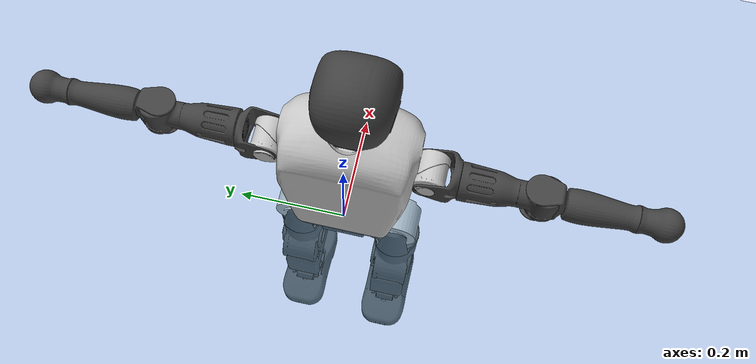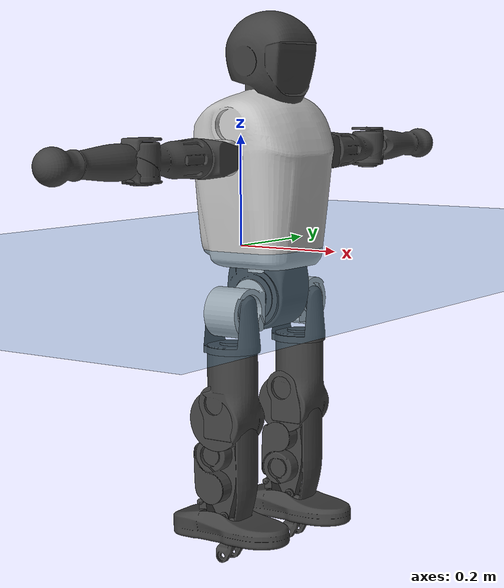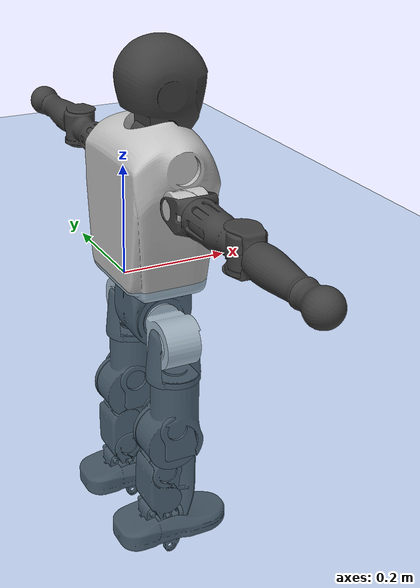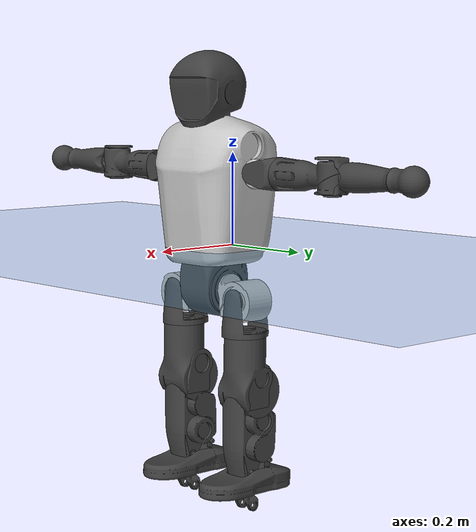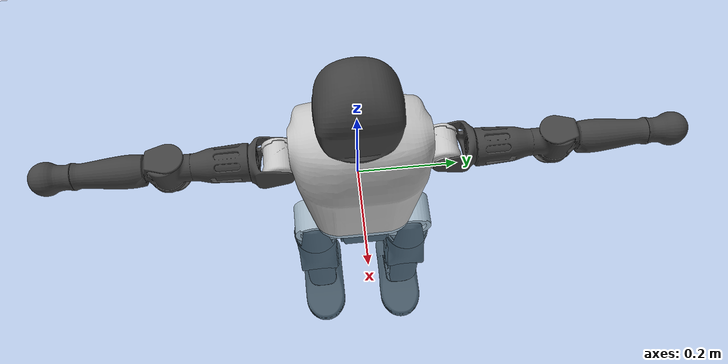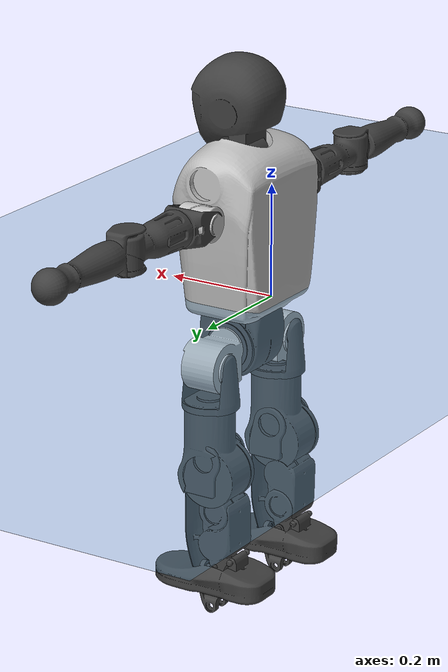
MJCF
<mujoco model="T1">
  <compiler angle="radian" assetdir="assets" balanceinertia="true" inertiafromgeom="false"/>

  <option timestep="0.005" density="1.2" viscosity="2e-05"/>

  <size nkey="1"/>

  <visual>
    <quality shadowsize="8192"/>
    <map shadowclip="0.5"/>
  </visual>

  <default>
    <default class="/">
      <joint armature="0.01" damping="0.01" frictionloss="0.1"/>
      <geom contype="0" conaffinity="0" group="1" solref="-1000 -80"/>
      <site size="0.01 0.005 0.005" group="5"/>
      <general forcelimited="true" biastype="affine" gainprm="25" biasprm="0 -25 -0.6"/>
      <default class="t1">
        <geom rgba="0.25 0.25 0.25 1"/>
        <default class="visual">
          <geom type="mesh" group="2"/>
        </default>
        <default class="collision">
          <geom group="3"/>
        </default>
        <default class="foot">
          <geom size="0.1115 0.05 0.015" type="box" condim="6" group="4" priority="1" solimp="0.015 1 0.015"/>
        </default>
        <default class="reward_collision_sphere">
          <geom group="5" rgba="1 0 0 1"/>
        </default>
      </default>
    </default>
  </default>

  <asset>
    <texture type="skybox" colorspace="auto" name="//unnamed_texture_0" builtin="gradient" rgb1="0.95 0.95 0.95" rgb2="0.95 0.95 0.95" width="100" height="600"/>
    <texture type="2d" colorspace="auto" name="texplane" builtin="checker" rgb1="0.345 0.575 0.748" rgb2="0.345 0.575 0.748" markrgb="1 1 1" width="512" height="512"/>
    <material name="MatPlane" class="/" texture="texplane" texuniform="true" texrepeat="2 2" specular="0.9"/>
    <mesh name="Trunk" class="/" file="Trunk.stl"/>
    <mesh name="H1" class="/" file="H1.stl"/>
    <mesh name="H2" class="/" file="H2.stl"/>
    <mesh name="AL1" class="/" file="AL1.stl"/>
    <mesh name="AL2" class="/" file="AL2.stl"/>
    <mesh name="AL3" class="/" file="AL3.stl"/>
    <mesh name="left_hand_link" class="/" file="left_hand_link.stl"/>
    <mesh name="AR1" class="/" file="AR1.stl"/>
    <mesh name="AR2" class="/" file="AR2.stl"/>
    <mesh name="AR3" class="/" file="AR3.stl"/>
    <mesh name="right_hand_link" class="/" file="right_hand_link.stl"/>
    <mesh name="Waist" class="/" file="Waist.stl"/>
    <mesh name="Hip_Pitch_Left" class="/" file="Hip_Pitch_Left.stl"/>
    <mesh name="Hip_Roll_Left" class="/" file="Hip_Roll_Left.stl"/>
    <mesh name="Hip_Yaw_Left" class="/" file="Hip_Yaw_Left.stl"/>
    <mesh name="Shank_Left" class="/" file="Shank_Left.stl"/>
    <mesh name="Ankle_Cross_Left" class="/" file="Ankle_Cross_Left.stl"/>
    <mesh name="left_foot_link" class="/" file="left_foot_link.stl"/>
    <mesh name="Hip_Pitch_Right" class="/" file="Hip_Pitch_Right.stl"/>
    <mesh name="Hip_Roll_Right" class="/" file="Hip_Roll_Right.stl"/>
    <mesh name="Hip_Yaw_Right" class="/" file="Hip_Yaw_Right.stl"/>
    <mesh name="Shank_Right" class="/" file="Shank_Right.stl"/>
    <mesh name="Ankle_Cross_Right" class="/" file="Ankle_Cross_Right.stl"/>
    <mesh name="right_foot_link" class="/" file="right_foot_link.stl"/>
  </asset>

  <worldbody>
    <geom name="floor" class="/" size="100 100 0.125" type="plane" group="0" material="MatPlane"/>
    <light name="toplight_shadow" class="/" pos="0 0 5" dir="0.0990148 0.0990148 -0.990148" type="directional" ambient="0.04 0.04 0.04" diffuse="0.55 0.55 0.55" specular="0.12 0.12 0.12"/>
    <light name="toplight_fill" class="/" pos="0 0 5" dir="0.0990148 0.0990148 -0.990148" type="directional" castshadow="false" ambient="0.04 0.04 0.04" diffuse="0.3 0.3 0.3" specular="0.08 0.08 0.08"/>
    <body name="trunk" childclass="t1" pos="0.00100565 0.000175343 0.00200408" quat="1 -0.000114566 -1.7324e-05 -0.000140658">
      <inertial pos="0.047667 5.26263e-05 0.077252" quat="0.999808 -0.0126803 -0.0148955 -0.0011144" mass="7.37493" diaginertia="0.0500536 0.0557534 0.013125"/>
      <joint name="//unnamed_joint_0" type="free" armature="0" damping="0" frictionloss="0"/>
      <geom name="//unnamed_geom_1" class="visual" rgba="0.76 0.76 0.76 1" mesh="Trunk"/>
      <geom name="//unnamed_geom_2" class="collision" size="0.0642606 0.0856808 0.128521" pos="0.0532717 0 0.0896445" type="box"/>
      <geom name="//unnamed_geom_3" class="reward_collision_sphere" size="0.098533" pos="0.0532717 0 0.0747038"/>
      <geom name="//unnamed_geom_4" class="reward_collision_sphere" size="0.0128521" pos="0.0532717 0.0795197 0"/>
      <geom name="//unnamed_geom_5" class="reward_collision_sphere" size="0.0128521" pos="0.0532717 -0.0795197 0"/>
      <geom name="//unnamed_geom_6" class="reward_collision_sphere" size="0.0128521" pos="0.0532717 0.100101 0.134467"/>
      <geom name="//unnamed_geom_7" class="reward_collision_sphere" size="0.0128521" pos="0.0532717 -0.100101 0.134467"/>
      <site name="imu" pos="-0.000231844 -0.00639386 0.0131795" size="0.00856808"/>
      <camera name="track" pos="0 -1.87105 0" quat="0.707107 0.707107 0 0" mode="trackcom"/>
      <camera name="ego_camera" pos="0.108319 0 0.313756" quat="-0.5 -0.5 0.5 0.5"/>
      <body name="H1" pos="0.0516957 -0.00310671 0.181637" quat="0.999999 -0.000902863 -0.000609876 0.000842365">
        <inertial pos="-0.00232526 -0.00228628 0.0420126" quat="0.764145 -0.0167486 0.0107329 0.644737" mass="0.274119" diaginertia="0.000133533 0.000159687 3.50826e-05"/>
        <joint name="AAHead_yaw" pos="0 0 0" axis="0.00132499 -0.00101038 0.999999" stiffness="0.0019085" range="-1.52207 1.62109" armature="0.00920635" damping="0.0165174" frictionloss="0.0782318"/>
        <geom name="//unnamed_geom_8" class="visual" mesh="H1"/>
        <body name="H2" pos="-0.00131044 -0.000933522 0.0456661" quat="1 -7.47566e-05 0.000414442 0.000136726">
          <inertial pos="0.00645876 0.0016985 0.0761953" quat="0.987939 0.100674 -0.0832535 -0.0831314" mass="0.391982" diaginertia="0.00114276 0.00132535 0.000395"/>
          <joint name="Head_pitch" pos="0 0 0" axis="0.00416645 -0.999968 0.00688302" stiffness="0.00703879" range="-1.21367 0.399277" armature="0.00789695" damping="0" frictionloss="0.0853888"/>
          <geom name="//unnamed_geom_9" class="visual" mesh="H2"/>
          <geom name="//unnamed_geom_10" class="collision" size="0.0685447" pos="0.00887862 0 0.0821741"/>
          <geom name="//unnamed_geom_11" class="reward_collision_sphere" size="0.0771128" pos="0.0177572 0 0.0747038"/>
        </body>
      </body>
      <body name="AL1" pos="0.0503044 0.0994567 0.162468" quat="0.999999 -0.000214464 0.00111684 0.000930343">
        <inertial pos="0.0021628 0.0447894 0.00076768" quat="0.498643 0.489282 -0.504904 0.506982" mass="0.326036" diaginertia="0.000744532 0.000917367 6.99263e-05"/>
        <joint name="Left_Shoulder_Pitch" pos="0 0 0" axis="-0.00374173 0.999962 0.00791827" stiffness="0.00229063" range="-3.33144 1.16555" armature="0.00894619" damping="0.00706643" frictionloss="0.0834645"/>
        <geom name="//unnamed_geom_12" class="visual" rgba="0.76 0.76 0.76 1" mesh="AL1"/>
        <body name="AL2" pos="0.00307681 0.0454941 0.00160091" quat="1 4.57321e-06 -1.84103e-05 4.79659e-06">
          <inertial pos="0.00669573 0.0364736 -0.00224027" quat="0.487019 0.511668 -0.488609 0.512124" mass="0.100991" diaginertia="0.000225454 0.000256161 4.10633e-05"/>
          <joint name="Left_Shoulder_Roll" pos="0 0 0" axis="-0.999945 0.00988441 0.00353549" range="-1.62812 1.72109" armature="0.00976623" damping="0.00671555" frictionloss="0.0753911"/>
          <geom name="//unnamed_geom_13" class="visual" mesh="AL2"/>
          <body name="AL3" pos="0.00445113 0.0580616 0.000326931" quat="1 -0.000192388 9.29319e-05 -0.000197014">
            <inertial pos="-0.000726253 0.0789095 -0.000349039" quat="0.710426 0.703739 -0.00678474 -0.00111362" mass="0.648282" diaginertia="0.00725187 0.00914596 0.000140804"/>
            <joint name="Left_Elbow_Pitch" pos="0 0 0" axis="0.00125752 -0.999985 -0.00537916" stiffness="0.0155355" range="-2.32804 2.2524" armature="0.0081206" damping="0.00964172" frictionloss="0.0827123"/>
            <geom name="//unnamed_geom_14" class="visual" mesh="AL3"/>
            <geom name="//unnamed_geom_15" class="collision" size="0.0257043 0.0642606" pos="0 0.0467763 0" quat="0.707105 0.707108 0 0" type="cylinder"/>
            <geom name="//unnamed_geom_16" class="reward_collision_sphere" size="0.0308451"/>
            <body name="left_hand_link" pos="0.00100953 0.137905 0.0035518" quat="1 4.68843e-05 5.0683e-05 0.00037699">
              <inertial pos="0.000400651 0.100068 -0.000535172" quat="0.704205 0.709991 -0.00234983 0.00166758" mass="0.20828" diaginertia="0.004687 0.00578965 4.85306e-05"/>
              <joint name="Left_Elbow_Yaw" pos="0 0 0" axis="-0.00469301 0.00793199 0.999958" range="-2.44441 0.0351728" armature="0.00857528" damping="0.000223339" frictionloss="0.0855032"/>
              <geom name="//unnamed_geom_17" class="visual" mesh="left_hand_link"/>
              <geom name="//unnamed_geom_18" class="collision" size="0.0257043 0.0749707" pos="0 0.121618 0" quat="0.707105 0.707108 0 0" type="cylinder"/>
              <geom name="//unnamed_geom_19" class="reward_collision_sphere" size="0.0428404"/>
              <geom name="//unnamed_geom_20" class="reward_collision_sphere" size="0.0299883" pos="0 0.102908 0"/>
              <geom name="//unnamed_geom_21" class="reward_collision_sphere" size="0.0299883" pos="0 0.201138 0"/>
            </body>
          </body>
        </body>
      </body>
      <body name="AR1" pos="0.0495323 -0.0964876 0.163696" quat="1 0.000347499 0.000275324 -0.000234987">
        <inertial pos="-0.00212158 -0.0433871 7.97983e-05" quat="0.502382 0.495005 -0.503 0.499573" mass="0.347216" diaginertia="0.000749232 0.000915977 6.9377e-05"/>
        <joint name="Right_Shoulder_Pitch" pos="0 0 0" axis="0.00441637 -0.999885 0.0145378" stiffness="0.00275068" range="-1.21509 3.30217" armature="0.0089853" damping="0.0152634" frictionloss="0.0833887"/>
        <geom name="//unnamed_geom_22" class="visual" rgba="0.76 0.76 0.76 1" mesh="AR1"/>
        <body name="AR2" pos="-0.000797296 -0.0415389 -0.000735092" quat="0.999999 0.00095165 0.000719659 -0.000876893">
          <inertial pos="0.000426699 -0.0327962 -0.00234143" quat="0.50923 0.478197 -0.514484 0.497311" mass="0.104106" diaginertia="0.000225237 0.000256143 4.14882e-05"/>
          <joint name="Right_Shoulder_Roll" pos="0 0 0" axis="-0.999987 -0.000548574 -0.00510076" stiffness="0.00951205" range="-1.68452 1.55656" armature="0.00820138" damping="0.0161928" frictionloss="0.0814327"/>
          <geom name="//unnamed_geom_23" class="visual" mesh="AR2"/>
          <body name="AR3" pos="-0.00286632 -0.0567015 0.00123903" quat="1 4.9747e-06 9.27195e-05 -0.000182709">
            <inertial pos="-0.00041405 -0.0815609 0.000798261" quat="0.708028 0.70618 0.00235611 0.000380634" mass="0.622534" diaginertia="0.00688964 0.00953205 0.000142747"/>
            <joint name="Right_Elbow_Pitch" pos="0 0 0" axis="0.000143888 1 -6.51076e-05" range="-2.273 2.27227" armature="0.00834275" damping="0.0191227" frictionloss="0.0879965"/>
            <geom name="//unnamed_geom_24" class="visual" mesh="AR3"/>
            <geom name="//unnamed_geom_25" class="collision" size="0.0257043 0.0642606" pos="0 -0.0467763 0" quat="0.707105 0.707108 0 0" type="cylinder"/>
            <geom name="//unnamed_geom_26" class="reward_collision_sphere" size="0.0308451"/>
            <body name="right_hand_link" pos="-0.00131366 -0.137296 0.00174279" quat="0.999999 -3.36447e-05 -0.00123155 -0.000901564">
              <inertial pos="0.000749508 -0.102698 0.00138235" quat="0.708656 0.70554 0.003968 -0.00223951" mass="0.2065" diaginertia="0.00433941 0.00575731 4.96079e-05"/>
              <joint name="Right_Elbow_Yaw" pos="0 0 0" axis="-0.00147528 -0.00114454 0.999998" range="-0.0392195 2.45855" armature="0.00860716" damping="0.00535259" frictionloss="0.0847768"/>
              <geom name="//unnamed_geom_27" class="visual" mesh="right_hand_link"/>
              <geom name="//unnamed_geom_28" class="collision" size="0.0257043 0.0749707" pos="0 -0.121618 0" quat="0.707105 0.707108 0 0" type="cylinder"/>
              <geom name="//unnamed_geom_29" class="reward_collision_sphere" size="0.0428404"/>
              <geom name="//unnamed_geom_30" class="reward_collision_sphere" size="0.0299883" pos="0 -0.102908 0"/>
              <geom name="//unnamed_geom_31" class="reward_collision_sphere" size="0.0299883" pos="0 -0.201138 0"/>
            </body>
          </body>
        </body>
      </body>
      <body name="Waist" pos="0.0569278 0.00242928 -0.08812" quat="1 -0.00013134 -8.15052e-05 -0.000572955">
        <inertial pos="0.00223883 0.000209785 0.00688537" quat="0.984569 0.00288218 -0.174709 -0.00962429" mass="1.63524" diaginertia="0.00289567 0.00367423 0.00108241"/>
        <joint name="Waist" pos="0 0 0" axis="-0.00746752 -4.88418e-05 0.999972" stiffness="0.00193476" range="-1.57266 1.62091" armature="0.00796854" damping="0.0211755" frictionloss="0.0875891"/>
        <geom name="//unnamed_geom_32" class="visual" mesh="Waist"/>
        <body name="Hip_Pitch_Left" pos="6.44564e-05 0.100221 4.41245e-05" quat="1 4.57631e-05 -0.000145224 7.77461e-05">
          <inertial pos="-0.00129098 -0.00679421 -0.0141759" quat="0.975068 0.221407 0.0147237 0.00225103" mass="0.613086" diaginertia="0.000954196 0.00100483 0.000281723"/>
          <joint name="Left_Hip_Pitch" pos="0 0 0" axis="0.00653347 0.999905 -0.0120978" stiffness="0.0103286" range="-1.79991 1.62579" armature="0.00849672" damping="0.0273894" frictionloss="0.0853543"/>
          <geom name="//unnamed_geom_33" class="visual" rgba="0.76 0.76 0.76 1" mesh="Hip_Pitch_Left"/>
          <body name="Hip_Roll_Left" pos="0.00308726 -0.00159513 -0.0178283" quat="1 5.98857e-05 0.000484215 9.08351e-05">
            <inertial pos="0.00074638 0.000448923 -0.0424641" quat="0.70558 -0.00735409 -0.00911843 0.708534" mass="0.240429" diaginertia="0.000961868 0.00105864 0.000116224"/>
            <joint name="Left_Hip_Roll" pos="0 0 0" axis="-0.999973 0.00711292 0.00165846" range="-1.53118 0.165326" armature="0.00878776" damping="0.0126091" frictionloss="0.0942155"/>
            <geom name="//unnamed_geom_34" class="visual" mesh="Hip_Roll_Left"/>
            <geom name="//unnamed_geom_35" class="reward_collision_sphere" size="0.0471245"/>
            <body name="Hip_Yaw_Left" pos="-0.0012924 0.00138899 -0.0613298" quat="0.999999 0.000357615 -0.00102002 0.000643951">
              <inertial pos="-0.0073996 6.85645e-05 -0.0656259" quat="0.696954 -0.0339687 -0.0316554 0.715611" mass="1.31278" diaginertia="0.0141976 0.0181425 0.000623415"/>
              <joint name="Left_Hip_Yaw" pos="0 0 0" axis="-0.000867975 -0.00536002 -0.999985" stiffness="0.005104" range="-1.01419 1.0142" armature="0.00876235" damping="0" frictionloss="0.0861442"/>
              <geom name="//unnamed_geom_36" class="visual" mesh="Hip_Yaw_Left"/>
              <geom name="//unnamed_geom_37" class="collision" size="0.0428404 0.0685447" type="cylinder"/>
              <body name="Shank_Left" pos="-0.0117051 -0.00226036 -0.102451" quat="0.999999 -0.000944969 -0.000815245 0.000371491">
                <inertial pos="-0.00439933 0.00249846 -0.09324" quat="0.997016 -0.00556909 -0.0287422 0.071427" mass="1.11915" diaginertia="0.0184128 0.025505 0.000427768"/>
                <joint name="Left_Knee_Pitch" pos="0 0 0" axis="-0.00547251 0.999984 -0.00165194" stiffness="8.49856e-05" range="0.0460844 2.32835" armature="0.00942983" damping="0.0137412" frictionloss="0.0922843"/>
                <geom name="//unnamed_geom_38" class="visual" mesh="Shank_Left"/>
                <geom name="//unnamed_geom_39" class="collision" size="0.0428404 0.0642606" pos="0 0 -0.0896445" type="cylinder"/>
                <geom name="//unnamed_geom_40" class="reward_collision_sphere" size="0.0556926"/>
                <body name="Ankle_Cross_Left" pos="-0.00233526 -0.00182889 -0.208773" quat="0.999999 0.00119237 0.000138923 -0.000597865">
                  <inertial pos="-0.00319383 0.00264233 -0.0058183" quat="0.437625 0.560703 0.546274 0.442358" mass="0.0467717" diaginertia="1.65027e-05 1.80466e-05 2.58183e-06"/>
                  <joint name="Left_Ankle_Pitch" pos="0 0 0" axis="-0.0141885 0.999889 -0.00457929" range="-0.860892 0.405169" armature="0.00731101" damping="0.0257613" frictionloss="0.0913751"/>
                  <geom name="//unnamed_geom_41" class="visual" mesh="Ankle_Cross_Left"/>
                  <body name="left_foot_link" pos="0.00132341 -0.00153847 -0.00985947" quat="0.999999 -0.000126277 -0.000871697 -0.000760999">
                    <inertial pos="-0.00225147 -0.000778114 -0.0056041" quat="0.00334707 0.61867 -0.00238947 0.785641" mass="0.413307" diaginertia="0.00152657 0.00170044 0.000519413"/>
                    <joint name="Left_Ankle_Roll" pos="0 0 0" axis="-0.999904 0.0136497 -0.00252479" stiffness="0.000477606" range="-0.492136 0.389705" armature="0.00871359" damping="0" frictionloss="0.0846289"/>
                    <geom name="//unnamed_geom_42" class="visual" mesh="left_foot_link"/>
                    <geom name="left_foot" class="foot" size="0.101721 0.0362907 0.0144072" pos="0.00887862 0 -0.0112056"/>
                    <geom name="//unnamed_geom_44" class="reward_collision_sphere" size="0.044554" pos="0.00887862 0 -0.0112056"/>
                    <geom name="//unnamed_geom_45" class="reward_collision_sphere" size="0.0257043" pos="0.0843469 -0.0215171 -0.0112056"/>
                    <geom name="//unnamed_geom_46" class="reward_collision_sphere" size="0.0257043" pos="-0.0621503 -0.0215171 -0.0112056"/>
                    <site name="left_foot" class="foot" pos="0.00887862 0 -0.0112056" size="0.00856808"/>
                  </body>
                </body>
              </body>
            </body>
          </body>
        </body>
        <body name="Hip_Pitch_Right" pos="-0.00422149 -0.0998057 -0.000714169" quat="0.999999 0.00142873 -4.72646e-05 0.000480642">
          <inertial pos="1.14932e-05 0.0093942 -0.0127316" quat="0.972942 -0.230191 0.0198667 0.000912197" mass="0.658412" diaginertia="0.00101692 0.00106701 0.000304882"/>
          <joint name="Right_Hip_Pitch" pos="0 0 0" axis="-0.00348672 -0.999949 0.00948344" range="-1.56187 1.7793" armature="0.00921643" damping="0.00168302" frictionloss="0.0977017"/>
          <geom name="//unnamed_geom_47" class="visual" rgba="0.76 0.76 0.76 1" mesh="Hip_Pitch_Right"/>
          <body name="Hip_Roll_Right" pos="-0.000783618 -0.00253316 -0.0124618" quat="1 -5.57515e-05 6.1177e-06 0.000150674">
            <inertial pos="0.00128731 0.00157335 -0.04253" quat="0.701375 -0.00207693 -0.00996388 0.712719" mass="0.235817" diaginertia="0.000905501 0.00107829 0.000116944"/>
            <joint name="Right_Hip_Roll" pos="0 0 0" axis="-0.999992 0.00168472 0.00359999" stiffness="0.000570755" range="-0.211722 1.61325" armature="0.0081816" damping="0.0143937" frictionloss="0.086401"/>
            <geom name="//unnamed_geom_48" class="visual" mesh="Hip_Roll_Right"/>
            <geom name="//unnamed_geom_49" class="reward_collision_sphere" size="0.0471245"/>
            <body name="Hip_Yaw_Right" pos="-0.00016153 -0.0019061 -0.0625019" quat="1 -0.00020992 -0.000458832 0.000305066">
              <inertial pos="-0.0030574 -0.00138944 -0.0648808" quat="0.718279 -0.0430644 -0.0344058 0.693568" mass="1.42898" diaginertia="0.0146087 0.0183291 0.000634066"/>
              <joint name="Right_Hip_Yaw" pos="0 0 0" axis="-0.016594 0.00625441 -0.999843" stiffness="0.00873554" range="-0.981625 1.01034" armature="0.00848403" damping="0.00648504" frictionloss="0.0815058"/>
              <geom name="//unnamed_geom_50" class="visual" mesh="Hip_Yaw_Right"/>
              <geom name="//unnamed_geom_51" class="collision" size="0.0428404 0.0685447" type="cylinder"/>
              <body name="Shank_Right" pos="-0.013428 0.00238488 -0.102586" quat="1 0.000157741 -0.000344467 -0.000281757">
                <inertial pos="-0.0038226 0.00239948 -0.0924593" quat="0.999311 -0.00226925 -0.0195419 -0.0314826" mass="1.12007" diaginertia="0.0192441 0.0245189 0.000443402"/>
                <joint name="Right_Knee_Pitch" pos="0 0 0" axis="-0.00627452 -0.999939 -0.0090454" stiffness="0.00936759" range="-2.37928 -0.00452138" armature="0.00823734" damping="0.0227643" frictionloss="0.0974505"/>
                <geom name="//unnamed_geom_52" class="visual" mesh="Shank_Right"/>
                <geom name="//unnamed_geom_53" class="collision" size="0.0428404 0.0642606" pos="0 0 -0.0896445" type="cylinder"/>
                <geom name="//unnamed_geom_54" class="reward_collision_sphere" size="0.0556926"/>
                <body name="Ankle_Cross_Right" pos="-0.00224266 -0.000216221 -0.211288" quat="1 -0.000605569 -0.000215372 0.00026022">
                  <inertial pos="-0.00326431 0.000293168 -0.00656489" quat="0.454353 0.543526 0.549762 0.442611" mass="0.0438474" diaginertia="1.55552e-05 1.7852e-05 2.56118e-06"/>
                  <joint name="Right_Ankle_Pitch" pos="0 0 0" axis="0.000799753 -0.999999 0.00132659" stiffness="0.0117048" range="-0.352445 0.822289" armature="0.00939884" damping="0" frictionloss="0.0864001"/>
                  <geom name="//unnamed_geom_55" class="visual" mesh="Ankle_Cross_Right"/>
                  <body name="right_foot_link" pos="0.00169588 0.00062195 -0.00649263" quat="0.999999 0.000110638 -0.000876203 0.00110221">
                    <inertial pos="0.0016475 0.000797799 -0.00826872" quat="-0.0013326 0.620615 0.000481503 0.784114" mass="0.454195" diaginertia="0.00148851 0.00176093 0.000507233"/>
                    <joint name="Right_Ankle_Roll" pos="0 0 0" axis="-0.999951 -0.00854027 0.00501304" range="-0.444123 0.496206" armature="0.00751132" damping="0.0064876" frictionloss="0.0832567"/>
                    <geom name="//unnamed_geom_56" class="visual" mesh="right_foot_link"/>
                    <geom name="right_foot" class="foot" size="0.103729 0.0418319 0.0129881" pos="0.00887862 0 -0.0112056"/>
                    <geom name="//unnamed_geom_58" class="reward_collision_sphere" size="0.0342723"/>
                    <geom name="//unnamed_geom_59" class="reward_collision_sphere" size="0.0257043" pos="0.00887862 0 -0.0112056"/>
                    <geom name="//unnamed_geom_60" class="reward_collision_sphere" size="0.0257043" pos="0.0843469 0.0215171 -0.0112056"/>
                    <geom name="//unnamed_geom_61" class="reward_collision_sphere" size="0.0257043" pos="-0.0621503 0.0215171 -0.0112056"/>
                    <site name="right_foot" class="foot" pos="0.00887862 0 -0.0112056" size="0.00856808"/>
                  </body>
                </body>
              </body>
            </body>
          </body>
        </body>
      </body>
    </body>
  </worldbody>

  <contact>
    <pair class="/" geom1="floor" geom2="left_foot" name="//unnamed_contact_0"/>
    <pair class="/" geom1="floor" geom2="right_foot" name="//unnamed_contact_1"/>
  </contact>

  <actuator>
    <general name="AAHead_yaw" class="/" joint="AAHead_yaw" forcerange="-5.36644 5.36644" gainprm="22.9577" biasprm="0 -22.9577 -0.551496"/>
    <general name="Head_pitch" class="/" joint="Head_pitch" forcerange="-5.9789 5.9789" gainprm="22.9577" biasprm="0 -22.9577 -0.551496"/>
    <general name="Left_Shoulder_Pitch" class="/" joint="Left_Shoulder_Pitch" forcerange="-15.8502 15.8502" gainprm="22.9577" biasprm="0 -22.9577 -0.551496"/>
    <general name="Left_Shoulder_Roll" class="/" joint="Left_Shoulder_Roll" forcerange="-15.4582 15.4582" gainprm="22.9577" biasprm="0 -22.9577 -0.551496"/>
    <general name="Left_Elbow_Pitch" class="/" joint="Left_Elbow_Pitch" forcerange="-16.4504 16.4504" gainprm="22.9577" biasprm="0 -22.9577 -0.551496"/>
    <general name="Left_Elbow_Yaw" class="/" joint="Left_Elbow_Yaw" forcerange="-15.1682 15.1682" gainprm="22.9577" biasprm="0 -22.9577 -0.551496"/>
    <general name="Right_Shoulder_Pitch" class="/" joint="Right_Shoulder_Pitch" forcerange="-15.9769 15.9769" gainprm="22.9577" biasprm="0 -22.9577 -0.551496"/>
    <general name="Right_Shoulder_Roll" class="/" joint="Right_Shoulder_Roll" forcerange="-15.1896 15.1896" gainprm="22.9577" biasprm="0 -22.9577 -0.551496"/>
    <general name="Right_Elbow_Pitch" class="/" joint="Right_Elbow_Pitch" forcerange="-14.3771 14.3771" gainprm="22.9577" biasprm="0 -22.9577 -0.551496"/>
    <general name="Right_Elbow_Yaw" class="/" joint="Right_Elbow_Yaw" forcerange="-16.2508 16.2508" gainprm="22.9577" biasprm="0 -22.9577 -0.551496"/>
    <general name="Waist" class="/" joint="Waist" forcerange="-28.5089 28.5089" gainprm="22.9577" biasprm="0 -22.9577 -0.551496"/>
    <general name="Left_Hip_Pitch" class="/" joint="Left_Hip_Pitch" forcerange="-38.7772 38.7772" gainprm="22.9577" biasprm="0 -22.9577 -0.551496"/>
    <general name="Left_Hip_Roll" class="/" joint="Left_Hip_Roll" forcerange="-26.7956 26.7956" gainprm="22.9577" biasprm="0 -22.9577 -0.551496"/>
    <general name="Left_Hip_Yaw" class="/" joint="Left_Hip_Yaw" forcerange="-27.9893 27.9893" gainprm="22.9577" biasprm="0 -22.9577 -0.551496"/>
    <general name="Left_Knee_Pitch" class="/" joint="Left_Knee_Pitch" forcerange="-53.7927 53.7927" gainprm="22.9577" biasprm="0 -22.9577 -0.551496"/>
    <general name="Left_Ankle_Pitch" class="/" joint="Left_Ankle_Pitch" forcerange="-17.5262 17.5262" gainprm="22.9577" biasprm="0 -22.9577 -0.551496"/>
    <general name="Left_Ankle_Roll" class="/" joint="Left_Ankle_Roll" forcerange="-12.5682 12.5682" gainprm="22.9577" biasprm="0 -22.9577 -0.551496"/>
    <general name="Right_Hip_Pitch" class="/" joint="Right_Hip_Pitch" forcerange="-39.4301 39.4301" gainprm="22.9577" biasprm="0 -22.9577 -0.551496"/>
    <general name="Right_Hip_Roll" class="/" joint="Right_Hip_Roll" forcerange="-26.9649 26.9649" gainprm="22.9577" biasprm="0 -22.9577 -0.551496"/>
    <general name="Right_Hip_Yaw" class="/" joint="Right_Hip_Yaw" forcerange="-27.9091 27.9091" gainprm="22.9577" biasprm="0 -22.9577 -0.551496"/>
    <general name="Right_Knee_Pitch" class="/" joint="Right_Knee_Pitch" forcerange="-56.8725 56.8725" gainprm="22.9577" biasprm="0 -22.9577 -0.551496"/>
    <general name="Right_Ankle_Pitch" class="/" joint="Right_Ankle_Pitch" forcerange="-15.4321 15.4321" gainprm="22.9577" biasprm="0 -22.9577 -0.551496"/>
    <general name="Right_Ankle_Roll" class="/" joint="Right_Ankle_Roll" forcerange="-12.6059 12.6059" gainprm="22.9577" biasprm="0 -22.9577 -0.551496"/>
  </actuator>

  <sensor>
    <gyro site="imu" name="imu_angular_velocity"/>
    <velocimeter site="imu" name="imu_linear_velocity"/>
    <framelinvel objtype="site" objname="left_foot" name="left_foot_global_linear_velocity"/>
    <framelinvel objtype="site" objname="right_foot" name="right_foot_global_linear_velocity"/>
  </sensor>

  <keyframe>
    <key name="home" qpos="0 0 0.6385 1 0 0 0 0 0 0 1.4 0 -0.4 0 -1.4 0 0.4 0 -0.4 0 0 0.8 -0.4 0 0.4 0 0 -0.8 0.4 0"/>
  </keyframe>
</mujoco>
